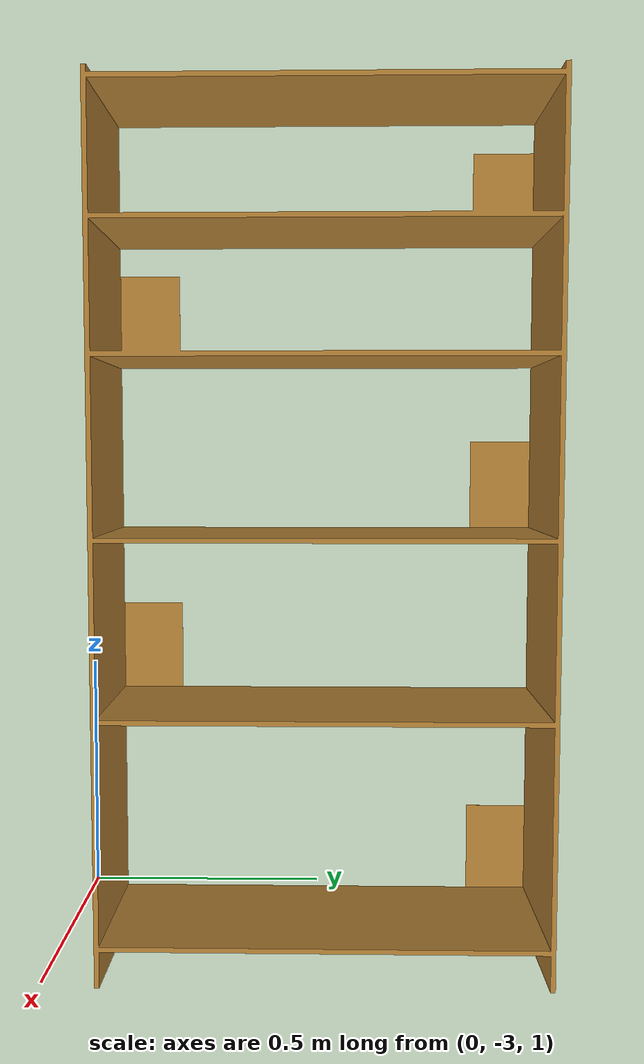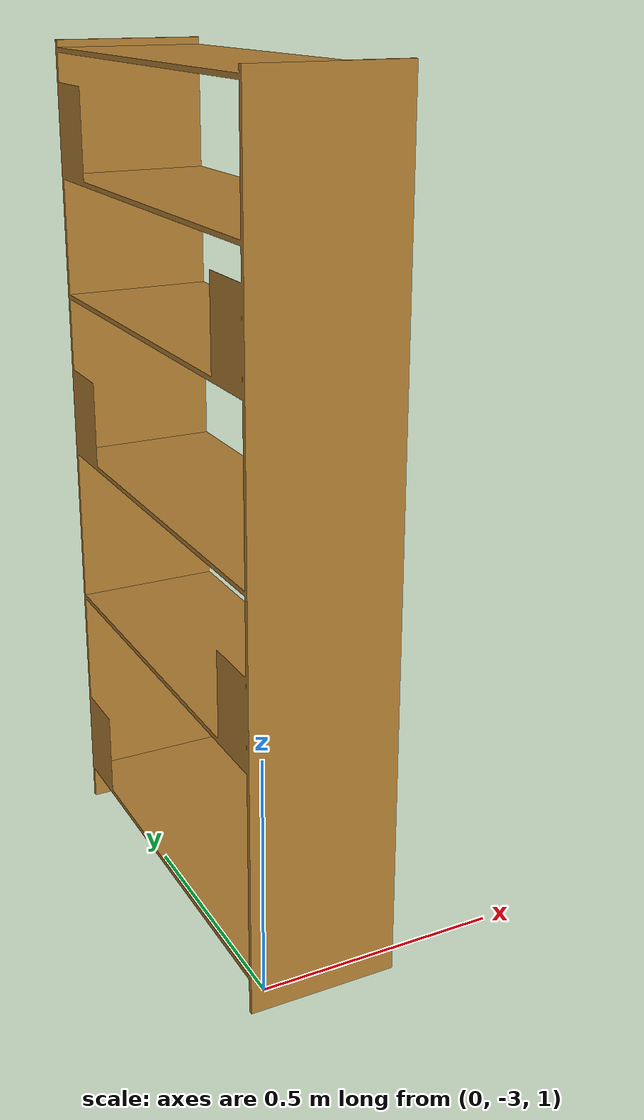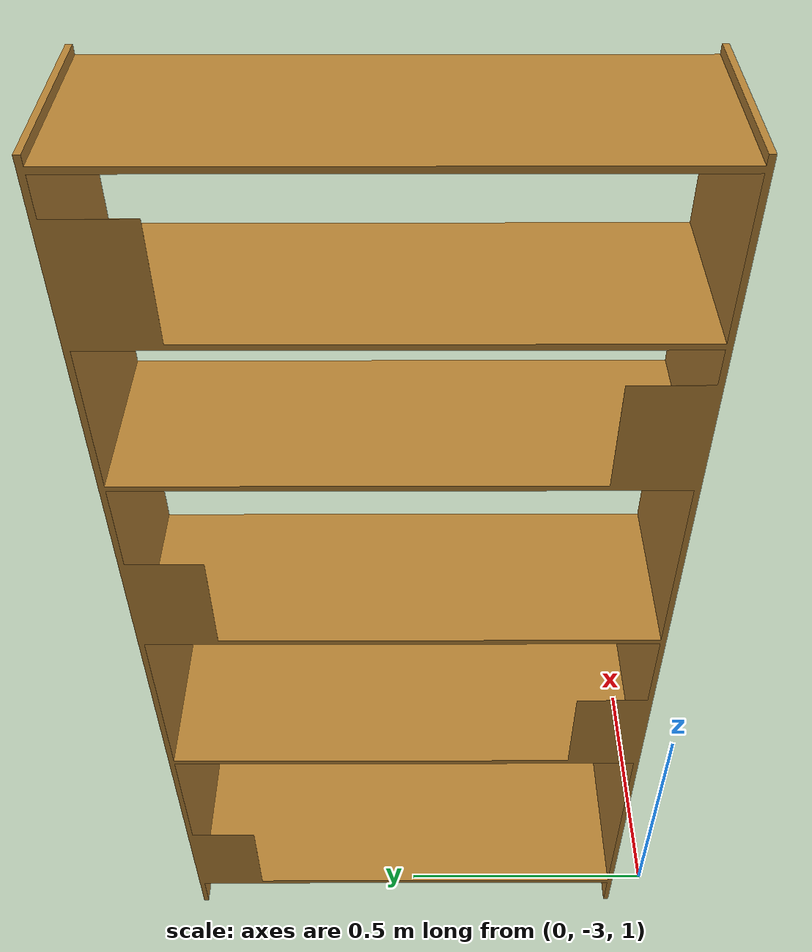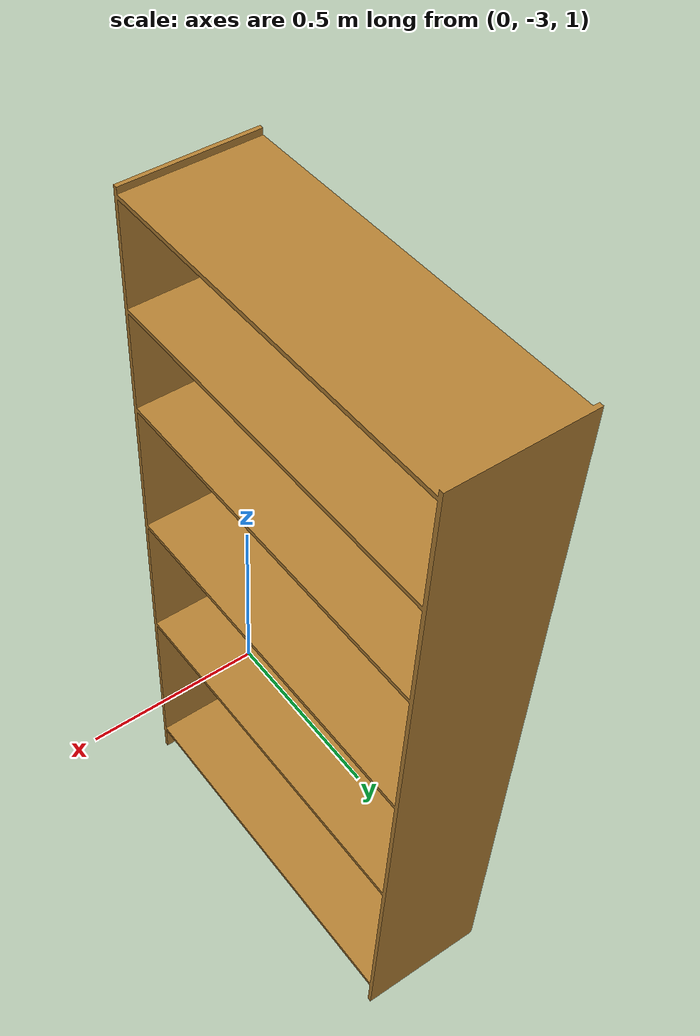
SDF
<?xml version="1.0"?>
<sdf version="1.6">
  <model name="rack">
    <static>true</static>
    <link name="link">
      <pose>0 0 0.9 0 0 0</pose>
      <collision name="collision">
        <geometry>
          <mesh>
            <uri>model://rack/rack.stl</uri>
            <scale>0.001 0.001 0.001</scale>
          </mesh>
        </geometry>
      </collision>
      <visual name="visual">
        <geometry>
          <mesh>
            <uri>model://rack/rack.stl</uri>
            <scale>0.001 0.001 0.001</scale>
          </mesh>
        </geometry>
        <material>
          <ambient>0.7 0.5 0.2 1</ambient>
          <diffuse>0.7 0.5 0.2 1</diffuse>
        </material>
      </visual>
    </link>
  </model>
</sdf>
